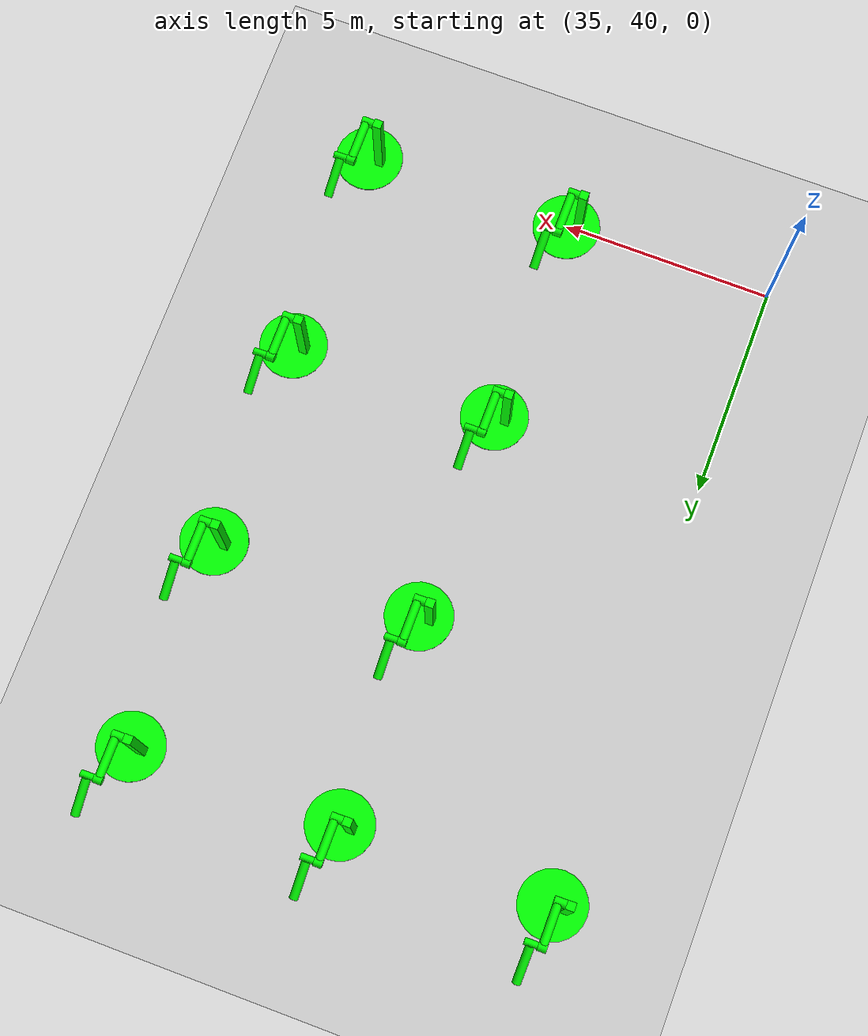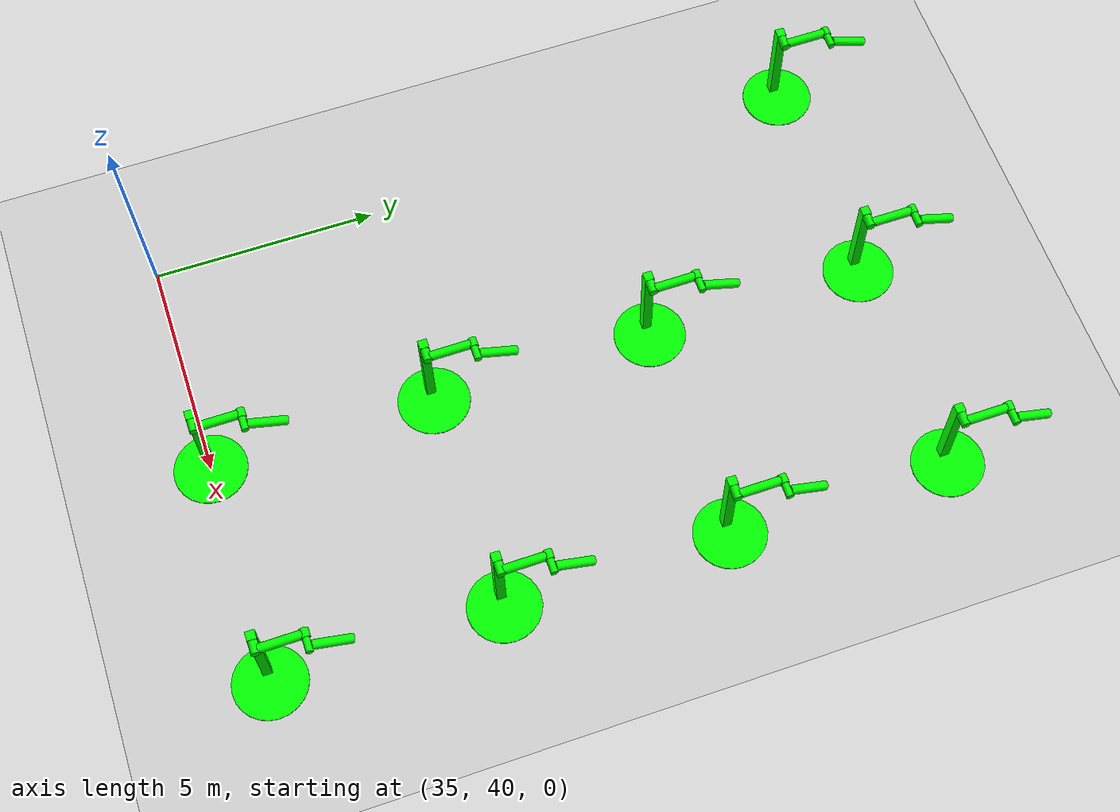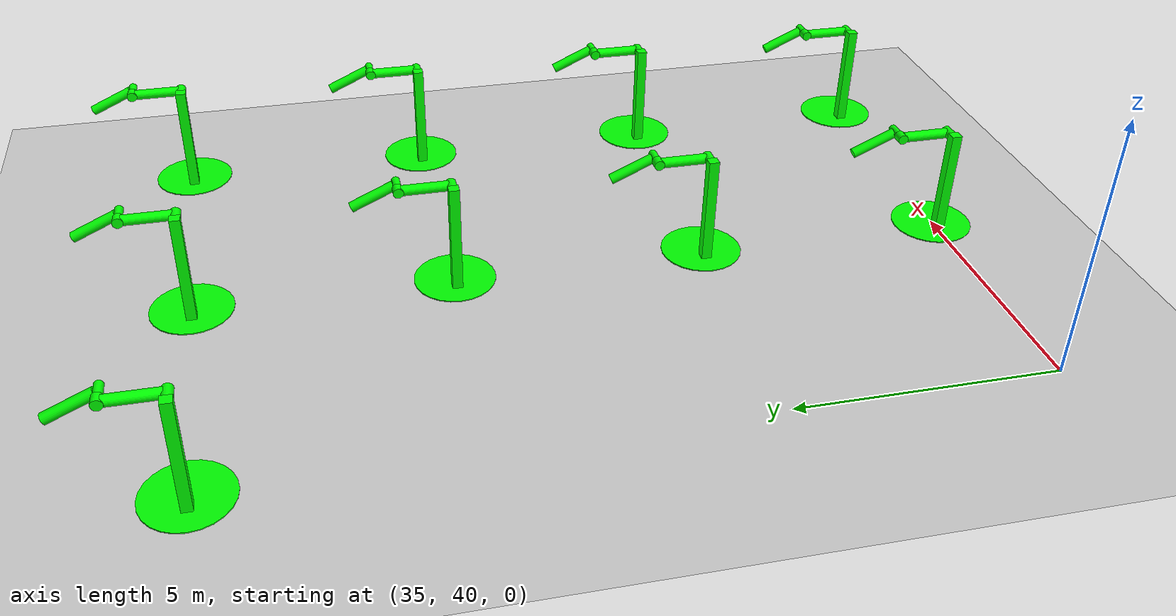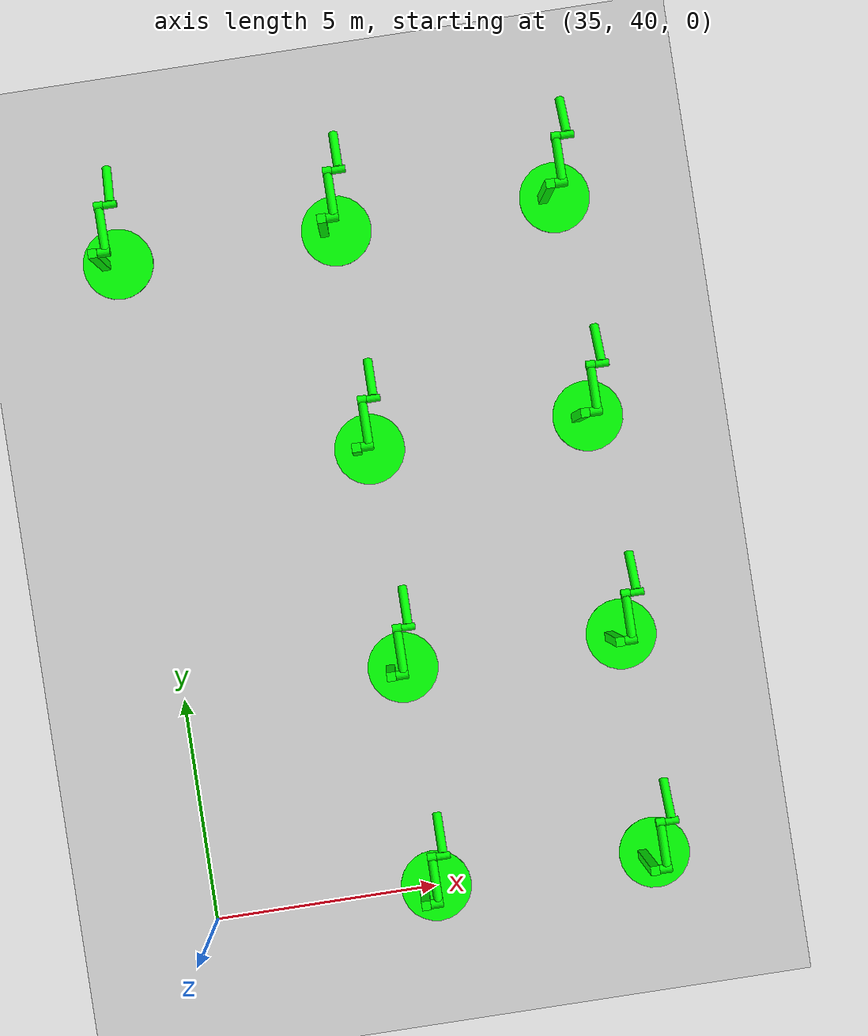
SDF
<sdf version="1.6">
 <world name="double_pendulums">
  <model name="ground_plane">
   <static>true</static>
   <link name="link">
    <collision name="collision">
     <geometry><plane><normal>0 0 1</normal><size>100 100</size></plane></geometry>
    </collision>
    <visual name="visual">
     <geometry><plane><normal>0 0 1</normal><size>100 100</size></plane></geometry>
     <material>
      <ambient>0.8 0.8 0.8 1</ambient>
      <diffuse>0.8 0.8 0.8 1</diffuse>
      <specular>0.8 0.8 0.8 1</specular>
     </material>
    </visual>
   </link>
  </model>
  <model name="dbl_pendulum_218">
   <pose>40 40 0 0 0 0</pose>
   <link name="base">
    <inertial><mass>100</mass></inertial>
    <visual name="vis_plate_on_ground">
     <pose>0 0 0.01 0 0 0</pose>
     <geometry><cylinder><radius>0.8</radius><length>0.02</length></cylinder></geometry>
     <material><ambient>0 1 0 1</ambient><diffuse>0 1 0 1</diffuse><specular>0 1 0 1</specular></material>
    </visual>
    <visual name="vis_pole">
     <pose>-0.275 0 1.1 0 0 0</pose>
     <geometry><box><size>0.2 0.2 2.2</size></box></geometry>
     <material><ambient>0 1 0 1</ambient><diffuse>0 1 0 1</diffuse><specular>0 1 0 1</specular></material>
    </visual>
    <collision name="col_plate_on_ground">
     <pose>0 0 0.01 0 0 0</pose>
     <geometry><cylinder><radius>0.8</radius><length>0.02</length></cylinder></geometry>
    </collision>
    <collision name="col_pole">
     <pose>-0.275 0 1.1 0 0 0</pose>
     <geometry><box><size>0.2 0.2 2.2</size></box></geometry>
    </collision>
   </link>
   <link name="upper_link">
    <pose>0 0 2.1 -1.5708 0 0</pose>
    <inertial><pose>0 0 0.5 0 0 0</pose></inertial>
    <visual name="vis_upper_joint">
     <pose>-0.05 0 0 0 1.5708 0</pose>
     <geometry><cylinder><radius>0.1</radius><length>0.3</length></cylinder></geometry>
     <material><ambient>0 1 0 1</ambient><diffuse>0 1 0 1</diffuse><specular>0 1 0 1</specular></material>
    </visual>
    <visual name="vis_lower_joint">
     <pose>0 0 1.0 0 1.5708 0</pose>
     <geometry><cylinder><radius>0.1</radius><length>0.2</length></cylinder></geometry>
     <material><ambient>0 1 0 1</ambient><diffuse>0 1 0 1</diffuse><specular>0 1 0 1</specular></material>
    </visual>
    <visual name="vis_cylinder">
     <pose>0 0 0.5 0 0 0</pose>
     <geometry><cylinder><radius>0.1</radius><length>0.9</length></cylinder></geometry>
     <material><ambient>0 1 0 1</ambient><diffuse>0 1 0 1</diffuse><specular>0 1 0 1</specular></material>
    </visual>
    <collision name="col_upper_joint">
     <pose>-0.05 0 0 0 1.5708 0</pose>
     <geometry><cylinder><radius>0.1</radius><length>0.3</length></cylinder></geometry>
    </collision>
    <collision name="col_lower_joint">
     <pose>0 0 1.0 0 1.5708 0</pose>
     <geometry><cylinder><radius>0.1</radius><length>0.2</length></cylinder></geometry>
    </collision>
    <collision name="col_cylinder">
     <pose>0 0 0.5 0 0 0</pose>
     <geometry><cylinder><radius>0.1</radius><length>0.9</length></cylinder></geometry>
    </collision>
   </link>
   <link name="lower_link">
    <pose>0.25 1.0 2.1 -2 0 0</pose>
    <inertial><pose>0 0 0.5 0 0 0</pose></inertial>
    <visual name="vis_lower_joint">
     <pose>0 0 0 0 1.5708 0</pose>
     <geometry><cylinder><radius>0.08</radius><length>0.3</length></cylinder></geometry>
     <material><ambient>0 1 0 1</ambient><diffuse>0 1 0 1</diffuse><specular>0 1 0 1</specular></material>
    </visual>
    <visual name="vis_cylinder">
     <pose>0 0 0.5 0 0 0</pose>
     <geometry><cylinder><radius>0.1</radius><length>0.9</length></cylinder></geometry>
     <material><ambient>0 1 0 1</ambient><diffuse>0 1 0 1</diffuse><specular>0 1 0 1</specular></material>
    </visual>
    <collision name="col_lower_joint">
     <pose>0 0 0 0 1.5708 0</pose>
     <geometry><cylinder><radius>0.08</radius><length>0.3</length></cylinder></geometry>
    </collision>
    <collision name="col_cylinder">
     <pose>0 0 0.5 0 0 0</pose>
     <geometry><cylinder><radius>0.1</radius><length>0.9</length></cylinder></geometry>
    </collision>
   </link>
   <joint name="upper_joint" type="revolute">
    <parent>base</parent>
    <child>upper_link</child>
    <axis><xyz>1.0 0 0</xyz></axis>
   </joint>
   <joint name="lower_joint" type="revolute">
    <parent>upper_link</parent>
    <child>lower_link</child>
    <axis><xyz>1.0 0 0</xyz></axis>
   </joint>
  </model>
  <model name="dbl_pendulum_219">
   <pose>45 40 0 0 0 0</pose>
   <link name="base">
    <inertial><mass>100</mass></inertial>
    <visual name="vis_plate_on_ground">
     <pose>0 0 0.01 0 0 0</pose>
     <geometry><cylinder><radius>0.8</radius><length>0.02</length></cylinder></geometry>
     <material><ambient>0 1 0 1</ambient><diffuse>0 1 0 1</diffuse><specular>0 1 0 1</specular></material>
    </visual>
    <visual name="vis_pole">
     <pose>-0.275 0 1.1 0 0 0</pose>
     <geometry><box><size>0.2 0.2 2.2</size></box></geometry>
     <material><ambient>0 1 0 1</ambient><diffuse>0 1 0 1</diffuse><specular>0 1 0 1</specular></material>
    </visual>
    <collision name="col_plate_on_ground">
     <pose>0 0 0.01 0 0 0</pose>
     <geometry><cylinder><radius>0.8</radius><length>0.02</length></cylinder></geometry>
    </collision>
    <collision name="col_pole">
     <pose>-0.275 0 1.1 0 0 0</pose>
     <geometry><box><size>0.2 0.2 2.2</size></box></geometry>
    </collision>
   </link>
   <link name="upper_link">
    <pose>0 0 2.1 -1.5708 0 0</pose>
    <inertial><pose>0 0 0.5 0 0 0</pose></inertial>
    <visual name="vis_upper_joint">
     <pose>-0.05 0 0 0 1.5708 0</pose>
     <geometry><cylinder><radius>0.1</radius><length>0.3</length></cylinder></geometry>
     <material><ambient>0 1 0 1</ambient><diffuse>0 1 0 1</diffuse><specular>0 1 0 1</specular></material>
    </visual>
    <visual name="vis_lower_joint">
     <pose>0 0 1.0 0 1.5708 0</pose>
     <geometry><cylinder><radius>0.1</radius><length>0.2</length></cylinder></geometry>
     <material><ambient>0 1 0 1</ambient><diffuse>0 1 0 1</diffuse><specular>0 1 0 1</specular></material>
    </visual>
    <visual name="vis_cylinder">
     <pose>0 0 0.5 0 0 0</pose>
     <geometry><cylinder><radius>0.1</radius><length>0.9</length></cylinder></geometry>
     <material><ambient>0 1 0 1</ambient><diffuse>0 1 0 1</diffuse><specular>0 1 0 1</specular></material>
    </visual>
    <collision name="col_upper_joint">
     <pose>-0.05 0 0 0 1.5708 0</pose>
     <geometry><cylinder><radius>0.1</radius><length>0.3</length></cylinder></geometry>
    </collision>
    <collision name="col_lower_joint">
     <pose>0 0 1.0 0 1.5708 0</pose>
     <geometry><cylinder><radius>0.1</radius><length>0.2</length></cylinder></geometry>
    </collision>
    <collision name="col_cylinder">
     <pose>0 0 0.5 0 0 0</pose>
     <geometry><cylinder><radius>0.1</radius><length>0.9</length></cylinder></geometry>
    </collision>
   </link>
   <link name="lower_link">
    <pose>0.25 1.0 2.1 -2 0 0</pose>
    <inertial><pose>0 0 0.5 0 0 0</pose></inertial>
    <visual name="vis_lower_joint">
     <pose>0 0 0 0 1.5708 0</pose>
     <geometry><cylinder><radius>0.08</radius><length>0.3</length></cylinder></geometry>
     <material><ambient>0 1 0 1</ambient><diffuse>0 1 0 1</diffuse><specular>0 1 0 1</specular></material>
    </visual>
    <visual name="vis_cylinder">
     <pose>0 0 0.5 0 0 0</pose>
     <geometry><cylinder><radius>0.1</radius><length>0.9</length></cylinder></geometry>
     <material><ambient>0 1 0 1</ambient><diffuse>0 1 0 1</diffuse><specular>0 1 0 1</specular></material>
    </visual>
    <collision name="col_lower_joint">
     <pose>0 0 0 0 1.5708 0</pose>
     <geometry><cylinder><radius>0.08</radius><length>0.3</length></cylinder></geometry>
    </collision>
    <collision name="col_cylinder">
     <pose>0 0 0.5 0 0 0</pose>
     <geometry><cylinder><radius>0.1</radius><length>0.9</length></cylinder></geometry>
    </collision>
   </link>
   <joint name="upper_joint" type="revolute">
    <parent>base</parent>
    <child>upper_link</child>
    <axis><xyz>1.0 0 0</xyz></axis>
   </joint>
   <joint name="lower_joint" type="revolute">
    <parent>upper_link</parent>
    <child>lower_link</child>
    <axis><xyz>1.0 0 0</xyz></axis>
   </joint>
  </model>
  <model name="dbl_pendulum_243">
   <pose>40 45 0 0 0 0</pose>
   <link name="base">
    <inertial><mass>100</mass></inertial>
    <visual name="vis_plate_on_ground">
     <pose>0 0 0.01 0 0 0</pose>
     <geometry><cylinder><radius>0.8</radius><length>0.02</length></cylinder></geometry>
     <material><ambient>0 1 0 1</ambient><diffuse>0 1 0 1</diffuse><specular>0 1 0 1</specular></material>
    </visual>
    <visual name="vis_pole">
     <pose>-0.275 0 1.1 0 0 0</pose>
     <geometry><box><size>0.2 0.2 2.2</size></box></geometry>
     <material><ambient>0 1 0 1</ambient><diffuse>0 1 0 1</diffuse><specular>0 1 0 1</specular></material>
    </visual>
    <collision name="col_plate_on_ground">
     <pose>0 0 0.01 0 0 0</pose>
     <geometry><cylinder><radius>0.8</radius><length>0.02</length></cylinder></geometry>
    </collision>
    <collision name="col_pole">
     <pose>-0.275 0 1.1 0 0 0</pose>
     <geometry><box><size>0.2 0.2 2.2</size></box></geometry>
    </collision>
   </link>
   <link name="upper_link">
    <pose>0 0 2.1 -1.5708 0 0</pose>
    <inertial><pose>0 0 0.5 0 0 0</pose></inertial>
    <visual name="vis_upper_joint">
     <pose>-0.05 0 0 0 1.5708 0</pose>
     <geometry><cylinder><radius>0.1</radius><length>0.3</length></cylinder></geometry>
     <material><ambient>0 1 0 1</ambient><diffuse>0 1 0 1</diffuse><specular>0 1 0 1</specular></material>
    </visual>
    <visual name="vis_lower_joint">
     <pose>0 0 1.0 0 1.5708 0</pose>
     <geometry><cylinder><radius>0.1</radius><length>0.2</length></cylinder></geometry>
     <material><ambient>0 1 0 1</ambient><diffuse>0 1 0 1</diffuse><specular>0 1 0 1</specular></material>
    </visual>
    <visual name="vis_cylinder">
     <pose>0 0 0.5 0 0 0</pose>
     <geometry><cylinder><radius>0.1</radius><length>0.9</length></cylinder></geometry>
     <material><ambient>0 1 0 1</ambient><diffuse>0 1 0 1</diffuse><specular>0 1 0 1</specular></material>
    </visual>
    <collision name="col_upper_joint">
     <pose>-0.05 0 0 0 1.5708 0</pose>
     <geometry><cylinder><radius>0.1</radius><length>0.3</length></cylinder></geometry>
    </collision>
    <collision name="col_lower_joint">
     <pose>0 0 1.0 0 1.5708 0</pose>
     <geometry><cylinder><radius>0.1</radius><length>0.2</length></cylinder></geometry>
    </collision>
    <collision name="col_cylinder">
     <pose>0 0 0.5 0 0 0</pose>
     <geometry><cylinder><radius>0.1</radius><length>0.9</length></cylinder></geometry>
    </collision>
   </link>
   <link name="lower_link">
    <pose>0.25 1.0 2.1 -2 0 0</pose>
    <inertial><pose>0 0 0.5 0 0 0</pose></inertial>
    <visual name="vis_lower_joint">
     <pose>0 0 0 0 1.5708 0</pose>
     <geometry><cylinder><radius>0.08</radius><length>0.3</length></cylinder></geometry>
     <material><ambient>0 1 0 1</ambient><diffuse>0 1 0 1</diffuse><specular>0 1 0 1</specular></material>
    </visual>
    <visual name="vis_cylinder">
     <pose>0 0 0.5 0 0 0</pose>
     <geometry><cylinder><radius>0.1</radius><length>0.9</length></cylinder></geometry>
     <material><ambient>0 1 0 1</ambient><diffuse>0 1 0 1</diffuse><specular>0 1 0 1</specular></material>
    </visual>
    <collision name="col_lower_joint">
     <pose>0 0 0 0 1.5708 0</pose>
     <geometry><cylinder><radius>0.08</radius><length>0.3</length></cylinder></geometry>
    </collision>
    <collision name="col_cylinder">
     <pose>0 0 0.5 0 0 0</pose>
     <geometry><cylinder><radius>0.1</radius><length>0.9</length></cylinder></geometry>
    </collision>
   </link>
   <joint name="upper_joint" type="revolute">
    <parent>base</parent>
    <child>upper_link</child>
    <axis><xyz>1.0 0 0</xyz></axis>
   </joint>
   <joint name="lower_joint" type="revolute">
    <parent>upper_link</parent>
    <child>lower_link</child>
    <axis><xyz>1.0 0 0</xyz></axis>
   </joint>
  </model>
  <model name="dbl_pendulum_244">
   <pose>45 45 0 0 0 0</pose>
   <link name="base">
    <inertial><mass>100</mass></inertial>
    <visual name="vis_plate_on_ground">
     <pose>0 0 0.01 0 0 0</pose>
     <geometry><cylinder><radius>0.8</radius><length>0.02</length></cylinder></geometry>
     <material><ambient>0 1 0 1</ambient><diffuse>0 1 0 1</diffuse><specular>0 1 0 1</specular></material>
    </visual>
    <visual name="vis_pole">
     <pose>-0.275 0 1.1 0 0 0</pose>
     <geometry><box><size>0.2 0.2 2.2</size></box></geometry>
     <material><ambient>0 1 0 1</ambient><diffuse>0 1 0 1</diffuse><specular>0 1 0 1</specular></material>
    </visual>
    <collision name="col_plate_on_ground">
     <pose>0 0 0.01 0 0 0</pose>
     <geometry><cylinder><radius>0.8</radius><length>0.02</length></cylinder></geometry>
    </collision>
    <collision name="col_pole">
     <pose>-0.275 0 1.1 0 0 0</pose>
     <geometry><box><size>0.2 0.2 2.2</size></box></geometry>
    </collision>
   </link>
   <link name="upper_link">
    <pose>0 0 2.1 -1.5708 0 0</pose>
    <inertial><pose>0 0 0.5 0 0 0</pose></inertial>
    <visual name="vis_upper_joint">
     <pose>-0.05 0 0 0 1.5708 0</pose>
     <geometry><cylinder><radius>0.1</radius><length>0.3</length></cylinder></geometry>
     <material><ambient>0 1 0 1</ambient><diffuse>0 1 0 1</diffuse><specular>0 1 0 1</specular></material>
    </visual>
    <visual name="vis_lower_joint">
     <pose>0 0 1.0 0 1.5708 0</pose>
     <geometry><cylinder><radius>0.1</radius><length>0.2</length></cylinder></geometry>
     <material><ambient>0 1 0 1</ambient><diffuse>0 1 0 1</diffuse><specular>0 1 0 1</specular></material>
    </visual>
    <visual name="vis_cylinder">
     <pose>0 0 0.5 0 0 0</pose>
     <geometry><cylinder><radius>0.1</radius><length>0.9</length></cylinder></geometry>
     <material><ambient>0 1 0 1</ambient><diffuse>0 1 0 1</diffuse><specular>0 1 0 1</specular></material>
    </visual>
    <collision name="col_upper_joint">
     <pose>-0.05 0 0 0 1.5708 0</pose>
     <geometry><cylinder><radius>0.1</radius><length>0.3</length></cylinder></geometry>
    </collision>
    <collision name="col_lower_joint">
     <pose>0 0 1.0 0 1.5708 0</pose>
     <geometry><cylinder><radius>0.1</radius><length>0.2</length></cylinder></geometry>
    </collision>
    <collision name="col_cylinder">
     <pose>0 0 0.5 0 0 0</pose>
     <geometry><cylinder><radius>0.1</radius><length>0.9</length></cylinder></geometry>
    </collision>
   </link>
   <link name="lower_link">
    <pose>0.25 1.0 2.1 -2 0 0</pose>
    <inertial><pose>0 0 0.5 0 0 0</pose></inertial>
    <visual name="vis_lower_joint">
     <pose>0 0 0 0 1.5708 0</pose>
     <geometry><cylinder><radius>0.08</radius><length>0.3</length></cylinder></geometry>
     <material><ambient>0 1 0 1</ambient><diffuse>0 1 0 1</diffuse><specular>0 1 0 1</specular></material>
    </visual>
    <visual name="vis_cylinder">
     <pose>0 0 0.5 0 0 0</pose>
     <geometry><cylinder><radius>0.1</radius><length>0.9</length></cylinder></geometry>
     <material><ambient>0 1 0 1</ambient><diffuse>0 1 0 1</diffuse><specular>0 1 0 1</specular></material>
    </visual>
    <collision name="col_lower_joint">
     <pose>0 0 0 0 1.5708 0</pose>
     <geometry><cylinder><radius>0.08</radius><length>0.3</length></cylinder></geometry>
    </collision>
    <collision name="col_cylinder">
     <pose>0 0 0.5 0 0 0</pose>
     <geometry><cylinder><radius>0.1</radius><length>0.9</length></cylinder></geometry>
    </collision>
   </link>
   <joint name="upper_joint" type="revolute">
    <parent>base</parent>
    <child>upper_link</child>
    <axis><xyz>1.0 0 0</xyz></axis>
   </joint>
   <joint name="lower_joint" type="revolute">
    <parent>upper_link</parent>
    <child>lower_link</child>
    <axis><xyz>1.0 0 0</xyz></axis>
   </joint>
  </model>
  <model name="dbl_pendulum_268">
   <pose>40 50 0 0 0 0</pose>
   <link name="base">
    <inertial><mass>100</mass></inertial>
    <visual name="vis_plate_on_ground">
     <pose>0 0 0.01 0 0 0</pose>
     <geometry><cylinder><radius>0.8</radius><length>0.02</length></cylinder></geometry>
     <material><ambient>0 1 0 1</ambient><diffuse>0 1 0 1</diffuse><specular>0 1 0 1</specular></material>
    </visual>
    <visual name="vis_pole">
     <pose>-0.275 0 1.1 0 0 0</pose>
     <geometry><box><size>0.2 0.2 2.2</size></box></geometry>
     <material><ambient>0 1 0 1</ambient><diffuse>0 1 0 1</diffuse><specular>0 1 0 1</specular></material>
    </visual>
    <collision name="col_plate_on_ground">
     <pose>0 0 0.01 0 0 0</pose>
     <geometry><cylinder><radius>0.8</radius><length>0.02</length></cylinder></geometry>
    </collision>
    <collision name="col_pole">
     <pose>-0.275 0 1.1 0 0 0</pose>
     <geometry><box><size>0.2 0.2 2.2</size></box></geometry>
    </collision>
   </link>
   <link name="upper_link">
    <pose>0 0 2.1 -1.5708 0 0</pose>
    <inertial><pose>0 0 0.5 0 0 0</pose></inertial>
    <visual name="vis_upper_joint">
     <pose>-0.05 0 0 0 1.5708 0</pose>
     <geometry><cylinder><radius>0.1</radius><length>0.3</length></cylinder></geometry>
     <material><ambient>0 1 0 1</ambient><diffuse>0 1 0 1</diffuse><specular>0 1 0 1</specular></material>
    </visual>
    <visual name="vis_lower_joint">
     <pose>0 0 1.0 0 1.5708 0</pose>
     <geometry><cylinder><radius>0.1</radius><length>0.2</length></cylinder></geometry>
     <material><ambient>0 1 0 1</ambient><diffuse>0 1 0 1</diffuse><specular>0 1 0 1</specular></material>
    </visual>
    <visual name="vis_cylinder">
     <pose>0 0 0.5 0 0 0</pose>
     <geometry><cylinder><radius>0.1</radius><length>0.9</length></cylinder></geometry>
     <material><ambient>0 1 0 1</ambient><diffuse>0 1 0 1</diffuse><specular>0 1 0 1</specular></material>
    </visual>
    <collision name="col_upper_joint">
     <pose>-0.05 0 0 0 1.5708 0</pose>
     <geometry><cylinder><radius>0.1</radius><length>0.3</length></cylinder></geometry>
    </collision>
    <collision name="col_lower_joint">
     <pose>0 0 1.0 0 1.5708 0</pose>
     <geometry><cylinder><radius>0.1</radius><length>0.2</length></cylinder></geometry>
    </collision>
    <collision name="col_cylinder">
     <pose>0 0 0.5 0 0 0</pose>
     <geometry><cylinder><radius>0.1</radius><length>0.9</length></cylinder></geometry>
    </collision>
   </link>
   <link name="lower_link">
    <pose>0.25 1.0 2.1 -2 0 0</pose>
    <inertial><pose>0 0 0.5 0 0 0</pose></inertial>
    <visual name="vis_lower_joint">
     <pose>0 0 0 0 1.5708 0</pose>
     <geometry><cylinder><radius>0.08</radius><length>0.3</length></cylinder></geometry>
     <material><ambient>0 1 0 1</ambient><diffuse>0 1 0 1</diffuse><specular>0 1 0 1</specular></material>
    </visual>
    <visual name="vis_cylinder">
     <pose>0 0 0.5 0 0 0</pose>
     <geometry><cylinder><radius>0.1</radius><length>0.9</length></cylinder></geometry>
     <material><ambient>0 1 0 1</ambient><diffuse>0 1 0 1</diffuse><specular>0 1 0 1</specular></material>
    </visual>
    <collision name="col_lower_joint">
     <pose>0 0 0 0 1.5708 0</pose>
     <geometry><cylinder><radius>0.08</radius><length>0.3</length></cylinder></geometry>
    </collision>
    <collision name="col_cylinder">
     <pose>0 0 0.5 0 0 0</pose>
     <geometry><cylinder><radius>0.1</radius><length>0.9</length></cylinder></geometry>
    </collision>
   </link>
   <joint name="upper_joint" type="revolute">
    <parent>base</parent>
    <child>upper_link</child>
    <axis><xyz>1.0 0 0</xyz></axis>
   </joint>
   <joint name="lower_joint" type="revolute">
    <parent>upper_link</parent>
    <child>lower_link</child>
    <axis><xyz>1.0 0 0</xyz></axis>
   </joint>
  </model>
  <model name="dbl_pendulum_269">
   <pose>45 50 0 0 0 0</pose>
   <link name="base">
    <inertial><mass>100</mass></inertial>
    <visual name="vis_plate_on_ground">
     <pose>0 0 0.01 0 0 0</pose>
     <geometry><cylinder><radius>0.8</radius><length>0.02</length></cylinder></geometry>
     <material><ambient>0 1 0 1</ambient><diffuse>0 1 0 1</diffuse><specular>0 1 0 1</specular></material>
    </visual>
    <visual name="vis_pole">
     <pose>-0.275 0 1.1 0 0 0</pose>
     <geometry><box><size>0.2 0.2 2.2</size></box></geometry>
     <material><ambient>0 1 0 1</ambient><diffuse>0 1 0 1</diffuse><specular>0 1 0 1</specular></material>
    </visual>
    <collision name="col_plate_on_ground">
     <pose>0 0 0.01 0 0 0</pose>
     <geometry><cylinder><radius>0.8</radius><length>0.02</length></cylinder></geometry>
    </collision>
    <collision name="col_pole">
     <pose>-0.275 0 1.1 0 0 0</pose>
     <geometry><box><size>0.2 0.2 2.2</size></box></geometry>
    </collision>
   </link>
   <link name="upper_link">
    <pose>0 0 2.1 -1.5708 0 0</pose>
    <inertial><pose>0 0 0.5 0 0 0</pose></inertial>
    <visual name="vis_upper_joint">
     <pose>-0.05 0 0 0 1.5708 0</pose>
     <geometry><cylinder><radius>0.1</radius><length>0.3</length></cylinder></geometry>
     <material><ambient>0 1 0 1</ambient><diffuse>0 1 0 1</diffuse><specular>0 1 0 1</specular></material>
    </visual>
    <visual name="vis_lower_joint">
     <pose>0 0 1.0 0 1.5708 0</pose>
     <geometry><cylinder><radius>0.1</radius><length>0.2</length></cylinder></geometry>
     <material><ambient>0 1 0 1</ambient><diffuse>0 1 0 1</diffuse><specular>0 1 0 1</specular></material>
    </visual>
    <visual name="vis_cylinder">
     <pose>0 0 0.5 0 0 0</pose>
     <geometry><cylinder><radius>0.1</radius><length>0.9</length></cylinder></geometry>
     <material><ambient>0 1 0 1</ambient><diffuse>0 1 0 1</diffuse><specular>0 1 0 1</specular></material>
    </visual>
    <collision name="col_upper_joint">
     <pose>-0.05 0 0 0 1.5708 0</pose>
     <geometry><cylinder><radius>0.1</radius><length>0.3</length></cylinder></geometry>
    </collision>
    <collision name="col_lower_joint">
     <pose>0 0 1.0 0 1.5708 0</pose>
     <geometry><cylinder><radius>0.1</radius><length>0.2</length></cylinder></geometry>
    </collision>
    <collision name="col_cylinder">
     <pose>0 0 0.5 0 0 0</pose>
     <geometry><cylinder><radius>0.1</radius><length>0.9</length></cylinder></geometry>
    </collision>
   </link>
   <link name="lower_link">
    <pose>0.25 1.0 2.1 -2 0 0</pose>
    <inertial><pose>0 0 0.5 0 0 0</pose></inertial>
    <visual name="vis_lower_joint">
     <pose>0 0 0 0 1.5708 0</pose>
     <geometry><cylinder><radius>0.08</radius><length>0.3</length></cylinder></geometry>
     <material><ambient>0 1 0 1</ambient><diffuse>0 1 0 1</diffuse><specular>0 1 0 1</specular></material>
    </visual>
    <visual name="vis_cylinder">
     <pose>0 0 0.5 0 0 0</pose>
     <geometry><cylinder><radius>0.1</radius><length>0.9</length></cylinder></geometry>
     <material><ambient>0 1 0 1</ambient><diffuse>0 1 0 1</diffuse><specular>0 1 0 1</specular></material>
    </visual>
    <collision name="col_lower_joint">
     <pose>0 0 0 0 1.5708 0</pose>
     <geometry><cylinder><radius>0.08</radius><length>0.3</length></cylinder></geometry>
    </collision>
    <collision name="col_cylinder">
     <pose>0 0 0.5 0 0 0</pose>
     <geometry><cylinder><radius>0.1</radius><length>0.9</length></cylinder></geometry>
    </collision>
   </link>
   <joint name="upper_joint" type="revolute">
    <parent>base</parent>
    <child>upper_link</child>
    <axis><xyz>1.0 0 0</xyz></axis>
   </joint>
   <joint name="lower_joint" type="revolute">
    <parent>upper_link</parent>
    <child>lower_link</child>
    <axis><xyz>1.0 0 0</xyz></axis>
   </joint>
  </model>
  <model name="dbl_pendulum_292">
   <pose>35 55 0 0 0 0</pose>
   <link name="base">
    <inertial><mass>100</mass></inertial>
    <visual name="vis_plate_on_ground">
     <pose>0 0 0.01 0 0 0</pose>
     <geometry><cylinder><radius>0.8</radius><length>0.02</length></cylinder></geometry>
     <material><ambient>0 1 0 1</ambient><diffuse>0 1 0 1</diffuse><specular>0 1 0 1</specular></material>
    </visual>
    <visual name="vis_pole">
     <pose>-0.275 0 1.1 0 0 0</pose>
     <geometry><box><size>0.2 0.2 2.2</size></box></geometry>
     <material><ambient>0 1 0 1</ambient><diffuse>0 1 0 1</diffuse><specular>0 1 0 1</specular></material>
    </visual>
    <collision name="col_plate_on_ground">
     <pose>0 0 0.01 0 0 0</pose>
     <geometry><cylinder><radius>0.8</radius><length>0.02</length></cylinder></geometry>
    </collision>
    <collision name="col_pole">
     <pose>-0.275 0 1.1 0 0 0</pose>
     <geometry><box><size>0.2 0.2 2.2</size></box></geometry>
    </collision>
   </link>
   <link name="upper_link">
    <pose>0 0 2.1 -1.5708 0 0</pose>
    <inertial><pose>0 0 0.5 0 0 0</pose></inertial>
    <visual name="vis_upper_joint">
     <pose>-0.05 0 0 0 1.5708 0</pose>
     <geometry><cylinder><radius>0.1</radius><length>0.3</length></cylinder></geometry>
     <material><ambient>0 1 0 1</ambient><diffuse>0 1 0 1</diffuse><specular>0 1 0 1</specular></material>
    </visual>
    <visual name="vis_lower_joint">
     <pose>0 0 1.0 0 1.5708 0</pose>
     <geometry><cylinder><radius>0.1</radius><length>0.2</length></cylinder></geometry>
     <material><ambient>0 1 0 1</ambient><diffuse>0 1 0 1</diffuse><specular>0 1 0 1</specular></material>
    </visual>
    <visual name="vis_cylinder">
     <pose>0 0 0.5 0 0 0</pose>
     <geometry><cylinder><radius>0.1</radius><length>0.9</length></cylinder></geometry>
     <material><ambient>0 1 0 1</ambient><diffuse>0 1 0 1</diffuse><specular>0 1 0 1</specular></material>
    </visual>
    <collision name="col_upper_joint">
     <pose>-0.05 0 0 0 1.5708 0</pose>
     <geometry><cylinder><radius>0.1</radius><length>0.3</length></cylinder></geometry>
    </collision>
    <collision name="col_lower_joint">
     <pose>0 0 1.0 0 1.5708 0</pose>
     <geometry><cylinder><radius>0.1</radius><length>0.2</length></cylinder></geometry>
    </collision>
    <collision name="col_cylinder">
     <pose>0 0 0.5 0 0 0</pose>
     <geometry><cylinder><radius>0.1</radius><length>0.9</length></cylinder></geometry>
    </collision>
   </link>
   <link name="lower_link">
    <pose>0.25 1.0 2.1 -2 0 0</pose>
    <inertial><pose>0 0 0.5 0 0 0</pose></inertial>
    <visual name="vis_lower_joint">
     <pose>0 0 0 0 1.5708 0</pose>
     <geometry><cylinder><radius>0.08</radius><length>0.3</length></cylinder></geometry>
     <material><ambient>0 1 0 1</ambient><diffuse>0 1 0 1</diffuse><specular>0 1 0 1</specular></material>
    </visual>
    <visual name="vis_cylinder">
     <pose>0 0 0.5 0 0 0</pose>
     <geometry><cylinder><radius>0.1</radius><length>0.9</length></cylinder></geometry>
     <material><ambient>0 1 0 1</ambient><diffuse>0 1 0 1</diffuse><specular>0 1 0 1</specular></material>
    </visual>
    <collision name="col_lower_joint">
     <pose>0 0 0 0 1.5708 0</pose>
     <geometry><cylinder><radius>0.08</radius><length>0.3</length></cylinder></geometry>
    </collision>
    <collision name="col_cylinder">
     <pose>0 0 0.5 0 0 0</pose>
     <geometry><cylinder><radius>0.1</radius><length>0.9</length></cylinder></geometry>
    </collision>
   </link>
   <joint name="upper_joint" type="revolute">
    <parent>base</parent>
    <child>upper_link</child>
    <axis><xyz>1.0 0 0</xyz></axis>
   </joint>
   <joint name="lower_joint" type="revolute">
    <parent>upper_link</parent>
    <child>lower_link</child>
    <axis><xyz>1.0 0 0</xyz></axis>
   </joint>
  </model>
  <model name="dbl_pendulum_293">
   <pose>40 55 0 0 0 0</pose>
   <link name="base">
    <inertial><mass>100</mass></inertial>
    <visual name="vis_plate_on_ground">
     <pose>0 0 0.01 0 0 0</pose>
     <geometry><cylinder><radius>0.8</radius><length>0.02</length></cylinder></geometry>
     <material><ambient>0 1 0 1</ambient><diffuse>0 1 0 1</diffuse><specular>0 1 0 1</specular></material>
    </visual>
    <visual name="vis_pole">
     <pose>-0.275 0 1.1 0 0 0</pose>
     <geometry><box><size>0.2 0.2 2.2</size></box></geometry>
     <material><ambient>0 1 0 1</ambient><diffuse>0 1 0 1</diffuse><specular>0 1 0 1</specular></material>
    </visual>
    <collision name="col_plate_on_ground">
     <pose>0 0 0.01 0 0 0</pose>
     <geometry><cylinder><radius>0.8</radius><length>0.02</length></cylinder></geometry>
    </collision>
    <collision name="col_pole">
     <pose>-0.275 0 1.1 0 0 0</pose>
     <geometry><box><size>0.2 0.2 2.2</size></box></geometry>
    </collision>
   </link>
   <link name="upper_link">
    <pose>0 0 2.1 -1.5708 0 0</pose>
    <inertial><pose>0 0 0.5 0 0 0</pose></inertial>
    <visual name="vis_upper_joint">
     <pose>-0.05 0 0 0 1.5708 0</pose>
     <geometry><cylinder><radius>0.1</radius><length>0.3</length></cylinder></geometry>
     <material><ambient>0 1 0 1</ambient><diffuse>0 1 0 1</diffuse><specular>0 1 0 1</specular></material>
    </visual>
    <visual name="vis_lower_joint">
     <pose>0 0 1.0 0 1.5708 0</pose>
     <geometry><cylinder><radius>0.1</radius><length>0.2</length></cylinder></geometry>
     <material><ambient>0 1 0 1</ambient><diffuse>0 1 0 1</diffuse><specular>0 1 0 1</specular></material>
    </visual>
    <visual name="vis_cylinder">
     <pose>0 0 0.5 0 0 0</pose>
     <geometry><cylinder><radius>0.1</radius><length>0.9</length></cylinder></geometry>
     <material><ambient>0 1 0 1</ambient><diffuse>0 1 0 1</diffuse><specular>0 1 0 1</specular></material>
    </visual>
    <collision name="col_upper_joint">
     <pose>-0.05 0 0 0 1.5708 0</pose>
     <geometry><cylinder><radius>0.1</radius><length>0.3</length></cylinder></geometry>
    </collision>
    <collision name="col_lower_joint">
     <pose>0 0 1.0 0 1.5708 0</pose>
     <geometry><cylinder><radius>0.1</radius><length>0.2</length></cylinder></geometry>
    </collision>
    <collision name="col_cylinder">
     <pose>0 0 0.5 0 0 0</pose>
     <geometry><cylinder><radius>0.1</radius><length>0.9</length></cylinder></geometry>
    </collision>
   </link>
   <link name="lower_link">
    <pose>0.25 1.0 2.1 -2 0 0</pose>
    <inertial><pose>0 0 0.5 0 0 0</pose></inertial>
    <visual name="vis_lower_joint">
     <pose>0 0 0 0 1.5708 0</pose>
     <geometry><cylinder><radius>0.08</radius><length>0.3</length></cylinder></geometry>
     <material><ambient>0 1 0 1</ambient><diffuse>0 1 0 1</diffuse><specular>0 1 0 1</specular></material>
    </visual>
    <visual name="vis_cylinder">
     <pose>0 0 0.5 0 0 0</pose>
     <geometry><cylinder><radius>0.1</radius><length>0.9</length></cylinder></geometry>
     <material><ambient>0 1 0 1</ambient><diffuse>0 1 0 1</diffuse><specular>0 1 0 1</specular></material>
    </visual>
    <collision name="col_lower_joint">
     <pose>0 0 0 0 1.5708 0</pose>
     <geometry><cylinder><radius>0.08</radius><length>0.3</length></cylinder></geometry>
    </collision>
    <collision name="col_cylinder">
     <pose>0 0 0.5 0 0 0</pose>
     <geometry><cylinder><radius>0.1</radius><length>0.9</length></cylinder></geometry>
    </collision>
   </link>
   <joint name="upper_joint" type="revolute">
    <parent>base</parent>
    <child>upper_link</child>
    <axis><xyz>1.0 0 0</xyz></axis>
   </joint>
   <joint name="lower_joint" type="revolute">
    <parent>upper_link</parent>
    <child>lower_link</child>
    <axis><xyz>1.0 0 0</xyz></axis>
   </joint>
  </model>
  <model name="dbl_pendulum_294">
   <pose>45 55 0 0 0 0</pose>
   <link name="base">
    <inertial><mass>100</mass></inertial>
    <visual name="vis_plate_on_ground">
     <pose>0 0 0.01 0 0 0</pose>
     <geometry><cylinder><radius>0.8</radius><length>0.02</length></cylinder></geometry>
     <material><ambient>0 1 0 1</ambient><diffuse>0 1 0 1</diffuse><specular>0 1 0 1</specular></material>
    </visual>
    <visual name="vis_pole">
     <pose>-0.275 0 1.1 0 0 0</pose>
     <geometry><box><size>0.2 0.2 2.2</size></box></geometry>
     <material><ambient>0 1 0 1</ambient><diffuse>0 1 0 1</diffuse><specular>0 1 0 1</specular></material>
    </visual>
    <collision name="col_plate_on_ground">
     <pose>0 0 0.01 0 0 0</pose>
     <geometry><cylinder><radius>0.8</radius><length>0.02</length></cylinder></geometry>
    </collision>
    <collision name="col_pole">
     <pose>-0.275 0 1.1 0 0 0</pose>
     <geometry><box><size>0.2 0.2 2.2</size></box></geometry>
    </collision>
   </link>
   <link name="upper_link">
    <pose>0 0 2.1 -1.5708 0 0</pose>
    <inertial><pose>0 0 0.5 0 0 0</pose></inertial>
    <visual name="vis_upper_joint">
     <pose>-0.05 0 0 0 1.5708 0</pose>
     <geometry><cylinder><radius>0.1</radius><length>0.3</length></cylinder></geometry>
     <material><ambient>0 1 0 1</ambient><diffuse>0 1 0 1</diffuse><specular>0 1 0 1</specular></material>
    </visual>
    <visual name="vis_lower_joint">
     <pose>0 0 1.0 0 1.5708 0</pose>
     <geometry><cylinder><radius>0.1</radius><length>0.2</length></cylinder></geometry>
     <material><ambient>0 1 0 1</ambient><diffuse>0 1 0 1</diffuse><specular>0 1 0 1</specular></material>
    </visual>
    <visual name="vis_cylinder">
     <pose>0 0 0.5 0 0 0</pose>
     <geometry><cylinder><radius>0.1</radius><length>0.9</length></cylinder></geometry>
     <material><ambient>0 1 0 1</ambient><diffuse>0 1 0 1</diffuse><specular>0 1 0 1</specular></material>
    </visual>
    <collision name="col_upper_joint">
     <pose>-0.05 0 0 0 1.5708 0</pose>
     <geometry><cylinder><radius>0.1</radius><length>0.3</length></cylinder></geometry>
    </collision>
    <collision name="col_lower_joint">
     <pose>0 0 1.0 0 1.5708 0</pose>
     <geometry><cylinder><radius>0.1</radius><length>0.2</length></cylinder></geometry>
    </collision>
    <collision name="col_cylinder">
     <pose>0 0 0.5 0 0 0</pose>
     <geometry><cylinder><radius>0.1</radius><length>0.9</length></cylinder></geometry>
    </collision>
   </link>
   <link name="lower_link">
    <pose>0.25 1.0 2.1 -2 0 0</pose>
    <inertial><pose>0 0 0.5 0 0 0</pose></inertial>
    <visual name="vis_lower_joint">
     <pose>0 0 0 0 1.5708 0</pose>
     <geometry><cylinder><radius>0.08</radius><length>0.3</length></cylinder></geometry>
     <material><ambient>0 1 0 1</ambient><diffuse>0 1 0 1</diffuse><specular>0 1 0 1</specular></material>
    </visual>
    <visual name="vis_cylinder">
     <pose>0 0 0.5 0 0 0</pose>
     <geometry><cylinder><radius>0.1</radius><length>0.9</length></cylinder></geometry>
     <material><ambient>0 1 0 1</ambient><diffuse>0 1 0 1</diffuse><specular>0 1 0 1</specular></material>
    </visual>
    <collision name="col_lower_joint">
     <pose>0 0 0 0 1.5708 0</pose>
     <geometry><cylinder><radius>0.08</radius><length>0.3</length></cylinder></geometry>
    </collision>
    <collision name="col_cylinder">
     <pose>0 0 0.5 0 0 0</pose>
     <geometry><cylinder><radius>0.1</radius><length>0.9</length></cylinder></geometry>
    </collision>
   </link>
   <joint name="upper_joint" type="revolute">
    <parent>base</parent>
    <child>upper_link</child>
    <axis><xyz>1.0 0 0</xyz></axis>
   </joint>
   <joint name="lower_joint" type="revolute">
    <parent>upper_link</parent>
    <child>lower_link</child>
    <axis><xyz>1.0 0 0</xyz></axis>
   </joint>
  </model>
 </world>
</sdf>
